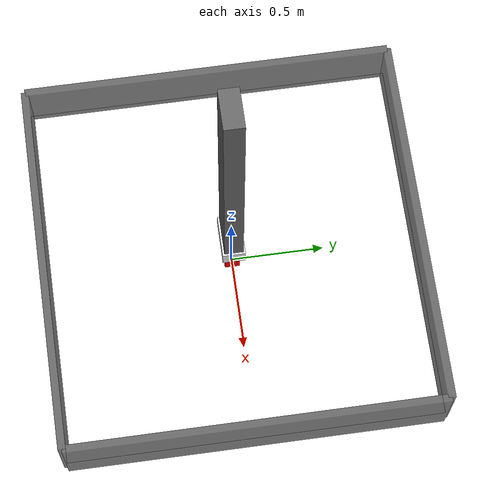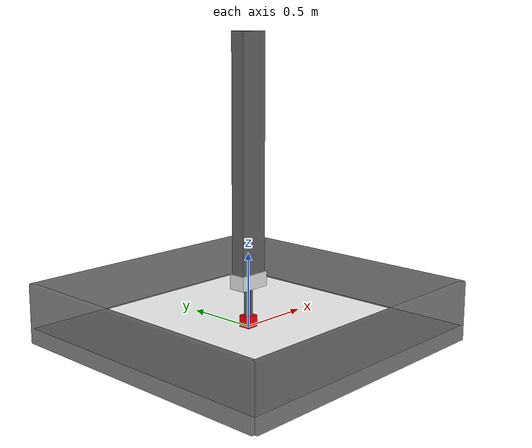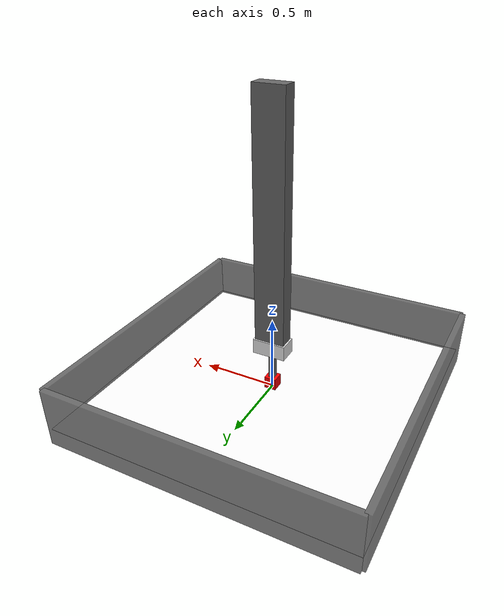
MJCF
<mujoco>
    <!-- Default settings for different tags of the model. -->
    <default>
        <joint pos="0 0 0" armature="1" limited="true" damping="1000" />
        <geom pos="0 0 0" rgba=".4 .4 .4 1" condim="3" contype="0" conaffinity="0" />
        <motor ctrlrange="-1 1" ctrllimited="true" gear="500" />
    </default>

    <compiler inertiafromgeom="true" angle="radian" />
    <option gravity="0 0 -2" timestep="0.01"/>

    <!-- Definition of all geometric shapes and joints. -->
    <worldbody>
        <!-- Diffuse lighting at position (0,0,3) pointing downwards in z direction. -->
        <light diffuse=".5 .5 .5" pos="0 0 10" dir="0 0 -1" castshadow="false" />

        <!-- Plane centered at origin with color green and size 1*1 unit^2. -->
        <geom name="table" type="plane" size="1 1 0.1" rgba="1 1 1 1" friction="0 0 0" contype="1" conaffinity="1" />

        <!-- Build walls around the plane. -->
        <geom type="box" size="1 0.02 0.2" pos="0 1 0.1" rgba="0.2 0.2 0.2 0.7"  contype="1" conaffinity="1" />
        <geom type="box" size="1 0.02 0.2" pos="0 -1 0.1" rgba="0.2 0.2 0.2 0.7"  contype="1" conaffinity="1" />
        <geom type="box" size="0.02 1 0.2" pos="1 0 0.1" rgba="0.2 0.2 0.2 0.7"  contype="1" conaffinity="1" />
        <geom type="box" size="0.02 1 0.2" pos="-1 0 0.1" rgba="0.2 0.2 0.2 0.7"  contype="1" conaffinity="1" />

        <!-- Build robotic arms. -->
        <body name="robot" pos="0 0 1.12">
            <joint name="cart_slide_x" type="slide" axis="1 0 0" range="-1 1" />
            <joint name="cart_slide_y" type="slide" axis="0 1 0" range="-1 1" />
            <joint name="cart_slide_z" type="slide" axis="0 0 1" range="0 0.3" />
            <joint name="cart_rotate_z" type="hinge" axis="0 0 1" range="-31.4 31.4" />

            <geom name="arm" type="box" size=".1 .05 .8" pos="0 0 0" />
            <geom name="wrist" type="box" size=".11 .06 .05" pos="0 0 -0.8" rgba=".9 .9 .9 1" contype="1" conaffinity="1" />

            <body name="l_hand" pos="-0.01 0 -0.9">
                <geom name="l_finger" type="box" size=".01 .02 .2" density="0.001" contype="1" conaffinity="1" />
            </body>

            <body name="r_hand" pos="0.01 0 -0.9">
                <geom name="r_finger" type="box" size=".01 .02 .2" density="0.001" contype="1" conaffinity="1" />
            </body>
        </body>

        <!-- Objects for the robot to push and goals for the objects. -->

        <!-- Object/Goal 1 -->
        <body name="obj1" pos="0 0 0.04">
            <geom type="box" size="0.04 0.04 0.04" rgba="1 0 0 1" density='0.00001' contype="1" conaffinity="1" />
            <joint name="obj1_slide_z" type="slide" axis="0 0 1" range="-10 10" damping="10.0" />
            <joint name="obj1_rotate_z" type="hinge" axis="0 0 1" range="-31.4 31.4" />
            <joint name="obj1_slide_x" type="slide" axis="1 0 0" range="-10 10" damping="10.0" />
            <joint name="obj1_slide_y" type="slide" axis="0 1 0" range="-10 10" damping="10.0" />
        </body>

        <!-- Object/Goal 2 -->
        <body name="obj2" pos="0 0 0.04">
            <geom type="box" size="0.04 0.04 0.04" rgba="0 .8 0 1" density='0.00001' contype="1" conaffinity="1" />
            <joint name="obj2_slide_z" type="slide" axis="0 0 1" range="-10 10" damping="10.0" />
            <joint name="obj2_rotate_z" type="hinge" axis="0 0 1" range="-31.4 31.4" />
            <joint name="obj2_slide_x" type="slide" axis="1 0 0" range="-10 10" damping="10.0" />
            <joint name="obj2_slide_y" type="slide" axis="0 1 0" range="-10 10" damping="10.0" />
        </body>

        <!-- Object/Goal 3 -->
        <body name="obj3" pos="0 0 0.04">
            <geom type="box" size="0.04 0.04 0.04" rgba="1 1 0 1" density='0.00001' contype="1" conaffinity="1" />
            <joint name="obj3_slide_z" type="slide" axis="0 0 1" range="-10 10" damping="10.0" />
            <joint name="obj3_rotate_z" type="hinge" axis="0 0 1" range="-31.4 31.4" />
            <joint name="obj3_slide_x" type="slide" axis="1 0 0" range="-10 10" damping="10.0" />
            <joint name="obj3_slide_y" type="slide" axis="0 1 0" range="-10 10" damping="10.0" />
        </body>

        <!-- Object/Goal 4 -->
        <body name="obj4" pos="0 0 0.04">
            <geom type="box" size="0.04 0.04 0.04" rgba=".3 .3 1 1" density='0.00001' contype="1" conaffinity="1" />
            <joint name="obj4_slide_z" type="slide" axis="0 0 1" range="-10 10" damping="10.0" />
            <joint name="obj4_rotate_z" type="hinge" axis="0 0 1" range="-31.4 31.4" />
            <joint name="obj4_slide_x" type="slide" axis="1 0 0" range="-10 10" damping="10.0" />
            <joint name="obj4_slide_y" type="slide" axis="0 1 0" range="-10 10" damping="10.0" />
        </body>

    </worldbody>

    <!-- Actuators that can be controlled by action vector. -->
    <actuator>
        <motor joint="cart_slide_x" />
        <motor joint="cart_slide_y" />
        <motor joint="cart_slide_z" />
        <motor joint="cart_rotate_z" />
    </actuator>
</mujoco>
